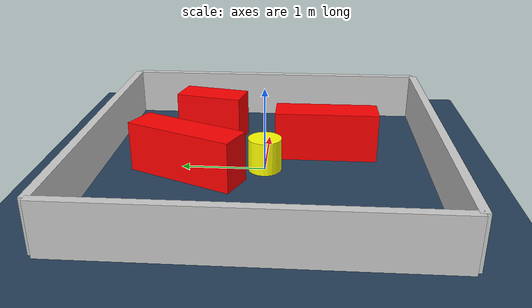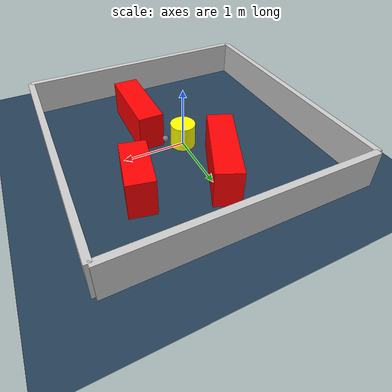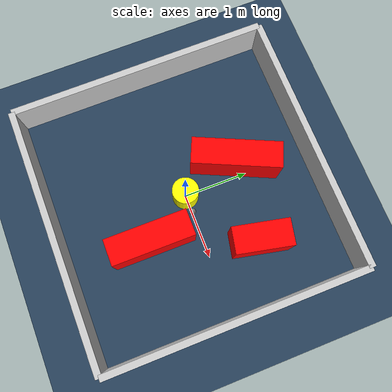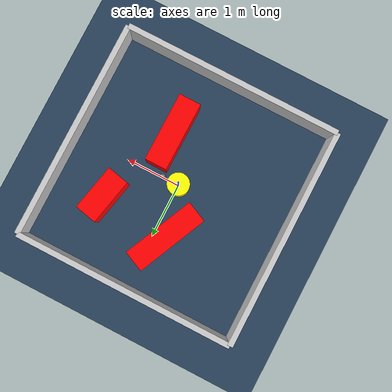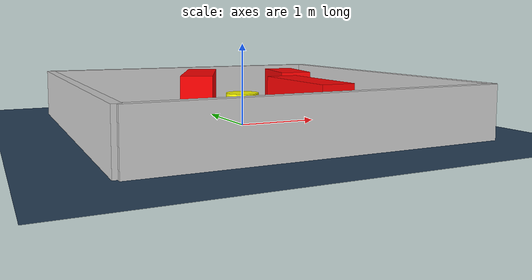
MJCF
<?xml version="1.0" ?>
<mujoco model="generated_environment">
  <option timestep="0.01" integrator="RK4" cone="elliptic"/>
  <default>
    <geom density="1"/>
  </default>
  <asset>
    <texture builtin="gradient" height="3072" rgb1="0.3 0.5 0.7" rgb2="0 0 0" type="skybox" width="512"/>
    <texture builtin="checker" height="300" mark="edge" markrgb="0.8 0.8 0.8" name="groundplane" rgb1="0.2 0.3 0.4" rgb2="0.1 0.2 0.3" type="2d" width="300"/>
    <material name="groundplane" reflectance="0.2" texrepeat="5 5" texture="groundplane" texuniform="true"/>
    <material name="robot" rgba="0.0 1.0 0.0 1"/>
  </asset>
  <worldbody>
    <light dir="0 0 -1" directional="true" pos="0 0 1.5"/>
    <geom condim="4" friction="1.0 0.005 0.001" material="groundplane" name="floor" size="0 0 0.05" type="plane"/>
    <body name="walls">
      <geom name="wall_1" condim="4" pos="-2.0 0.0 0.3" rgba="0.800000011920929 0.800000011920929 0.800000011920929 1.0" size="0.05 2.0 0.3" type="box"/>
      <geom name="wall_2" condim="4" pos="2.0 0.0 0.3" rgba="0.800000011920929 0.800000011920929 0.800000011920929 1.0" size="0.05 2.0 0.3" type="box"/>
      <geom name="wall_3" condim="4" pos="0.0 -2.0 0.3" rgba="0.800000011920929 0.800000011920929 0.800000011920929 1.0" size="2.0 0.05 0.3" type="box"/>
      <geom name="wall_4" condim="4" pos="0.0 2.0 0.3" rgba="0.800000011920929 0.800000011920929 0.800000011920929 1.0" size="2.0 0.05 0.3" type="box"/>
    </body>
    <body name="robot">
      <joint name="joint_x" type="slide" pos="0 0 0" axis="1 0 0"/>
      <joint name="joint_y" type="slide" pos="0 0 0" axis="0 1 0"/>
      <geom name="robot" type="sphere" pos="0.3 0.0 0.2" size="0.05" mass="5." friction="1.0 0.005 0.0001" condim="4" rgba="0.5 0.5 0.5 1.0"/>
      <site name="sensor_ball"/>
    </body>
    <body name="obstacle_movable_1">
      <geom name="obstacle_movable_1" condim="4" pos="0.0 0.0 0.2" euler="0 0 0.0" friction="1.0 0.005 0.001" rgba="1.0 1.0 0.0 1.0" size="0.2 0.2 0.0" type="cylinder" mass="0.1"/>
      <joint type="free"/>
    </body>
    <body name="obstacle_2_static">
      <geom name="obstacle_2_static" condim="4" pos="0.4860067142339273 -0.7316522015525271 0.3" euler="0 0 89.6573320846373" friction="1.0 0.005 0.001" rgba="1 0 0 1" size="0.6256863879601516 0.2 0.3" type="box"/>
    </body>
    <body name="obstacle_3_static">
      <geom name="obstacle_3_static" condim="4" pos="1.0495512382192969 0.764900713955248 0.3" euler="0 0 257.81558994806005" friction="1.0 0.005 0.001" rgba="1 0 0 1" size="0.42760364777588655 0.2 0.3" type="box"/>
    </body>
    <body name="obstacle_4_static">
      <geom name="obstacle_4_static" condim="4" pos="-0.21813347200035071 0.8937736175004505 0.3" euler="0 0 245.65788478071437" friction="1.0 0.005 0.001" rgba="1 0 0 1" size="0.6733718136395963 0.2 0.3" type="box"/>
    </body>
  </worldbody>
  <actuator>
    <motor name="actuator_x" joint="joint_x" gear="1" ctrlrange="-1 1"/>
    <motor name="actuator_y" joint="joint_y" gear="1" ctrlrange="-1 1"/>
  </actuator>
</mujoco>
